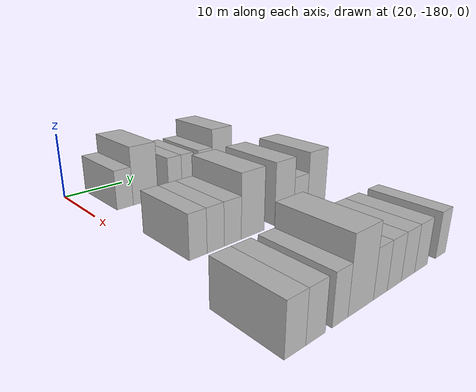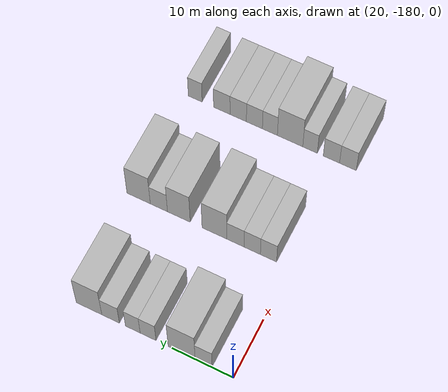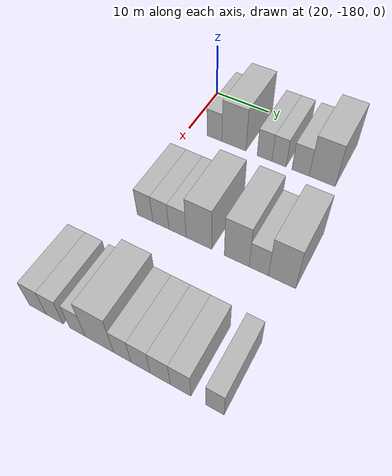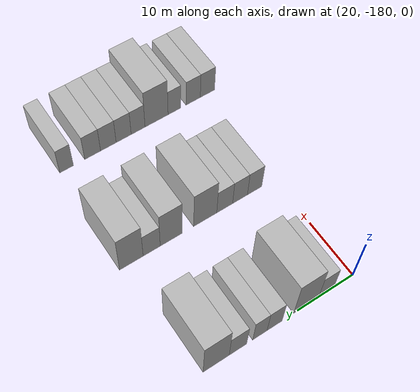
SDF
<sdf version="1.6">
 <world name="default">
  <model name="building_16">
   <static>1</static>
   <pose>25.0000 -175.1283 0 0.000000 0.000000 0.000000</pose>
   <link name="link">
    <pose>0 0 3.00 0 0 0</pose>
    <collision name="collision"><geometry><box><size>10.0000 2.7526 6.0000</size></box></geometry></collision>
    <visual name="visual">
     <cast_shadows>0</cast_shadows>
     <geometry><box><size>10.0000 2.7526 6.0000</size></box></geometry>
     <material>
      <script>
       <uri>model://HANNAS_wall/materials/scripts</uri>
       <uri>model://HANNAS_wall/materials/textures</uri>
       <name>vrc/HANNAS_wall</name>
      </script>
     </material>
    </visual>
   </link>
  </model>
  <model name="building_17">
   <static>1</static>
   <pose>25.0000 -171.5461 0 0.000000 0.000000 0.000000</pose>
   <link name="link">
    <pose>0 0 4.50 0 0 0</pose>
    <collision name="collision"><geometry><box><size>10.0000 4.4117 9.0000</size></box></geometry></collision>
    <visual name="visual">
     <cast_shadows>0</cast_shadows>
     <geometry><box><size>10.0000 4.4117 9.0000</size></box></geometry>
     <material>
      <script>
       <uri>model://HANNAS_wall/materials/scripts</uri>
       <uri>model://HANNAS_wall/materials/textures</uri>
       <name>vrc/HANNAS_wall</name>
      </script>
     </material>
    </visual>
   </link>
  </model>
  <model name="building_18">
   <static>1</static>
   <pose>25.0000 -166.0316 0 0.000000 0.000000 0.000000</pose>
   <link name="link">
    <pose>0 0 3.00 0 0 0</pose>
    <collision name="collision"><geometry><box><size>10.0000 2.6173 6.0000</size></box></geometry></collision>
    <visual name="visual">
     <cast_shadows>0</cast_shadows>
     <geometry><box><size>10.0000 2.6173 6.0000</size></box></geometry>
     <material>
      <script>
       <uri>model://HANNAS_wall/materials/scripts</uri>
       <uri>model://HANNAS_wall/materials/textures</uri>
       <name>vrc/HANNAS_wall</name>
      </script>
     </material>
    </visual>
   </link>
  </model>
  <model name="building_19">
   <static>1</static>
   <pose>25.0000 -163.5074 0 0.000000 0.000000 0.000000</pose>
   <link name="link">
    <pose>0 0 3.00 0 0 0</pose>
    <collision name="collision"><geometry><box><size>10.0000 2.4312 6.0000</size></box></geometry></collision>
    <visual name="visual">
     <cast_shadows>0</cast_shadows>
     <geometry><box><size>10.0000 2.4312 6.0000</size></box></geometry>
     <material>
      <script>
       <uri>model://HANNAS_wall/materials/scripts</uri>
       <uri>model://HANNAS_wall/materials/textures</uri>
       <name>vrc/HANNAS_wall</name>
      </script>
     </material>
    </visual>
   </link>
  </model>
  <model name="building_20">
   <static>1</static>
   <pose>25.0000 -159.8269 0 0.000000 0.000000 0.000000</pose>
   <link name="link">
    <pose>0 0 3.00 0 0 0</pose>
    <collision name="collision"><geometry><box><size>10.0000 2.9297 6.0000</size></box></geometry></collision>
    <visual name="visual">
     <cast_shadows>0</cast_shadows>
     <geometry><box><size>10.0000 2.9297 6.0000</size></box></geometry>
     <material>
      <script>
       <uri>model://HANNAS_wall/materials/scripts</uri>
       <uri>model://HANNAS_wall/materials/textures</uri>
       <name>vrc/HANNAS_wall</name>
      </script>
     </material>
    </visual>
   </link>
  </model>
  <model name="building_21">
   <static>1</static>
   <pose>25.0000 -156.2195 0 0.000000 0.000000 0.000000</pose>
   <link name="link">
    <pose>0 0 4.50 0 0 0</pose>
    <collision name="collision"><geometry><box><size>10.0000 4.2850 9.0000</size></box></geometry></collision>
    <visual name="visual">
     <cast_shadows>0</cast_shadows>
     <geometry><box><size>10.0000 4.2850 9.0000</size></box></geometry>
     <material>
      <script>
       <uri>model://HANNAS_wall/materials/scripts</uri>
       <uri>model://HANNAS_wall/materials/textures</uri>
       <name>vrc/HANNAS_wall</name>
      </script>
     </material>
    </visual>
   </link>
  </model>
  <model name="building_131">
   <static>1</static>
   <pose>44.0000 -176.3218 0 0.000000 0.000000 0.000000</pose>
   <link name="link">
    <pose>0 0 3.00 0 0 0</pose>
    <collision name="collision"><geometry><box><size>10.0000 2.6996 6.0000</size></box></geometry></collision>
    <visual name="visual">
     <cast_shadows>0</cast_shadows>
     <geometry><box><size>10.0000 2.6996 6.0000</size></box></geometry>
     <material>
      <script>
       <uri>model://HANNAS_wall/materials/scripts</uri>
       <uri>model://HANNAS_wall/materials/textures</uri>
       <name>vrc/HANNAS_wall</name>
      </script>
     </material>
    </visual>
   </link>
  </model>
  <model name="building_132">
   <static>1</static>
   <pose>44.0000 -173.6086 0 0.000000 0.000000 0.000000</pose>
   <link name="link">
    <pose>0 0 3.00 0 0 0</pose>
    <collision name="collision"><geometry><box><size>10.0000 2.7268 6.0000</size></box></geometry></collision>
    <visual name="visual">
     <cast_shadows>0</cast_shadows>
     <geometry><box><size>10.0000 2.7268 6.0000</size></box></geometry>
     <material>
      <script>
       <uri>model://HANNAS_wall/materials/scripts</uri>
       <uri>model://HANNAS_wall/materials/textures</uri>
       <name>vrc/HANNAS_wall</name>
      </script>
     </material>
    </visual>
   </link>
  </model>
  <model name="building_133">
   <static>1</static>
   <pose>44.0000 -170.7970 0 0.000000 0.000000 0.000000</pose>
   <link name="link">
    <pose>0 0 3.00 0 0 0</pose>
    <collision name="collision"><geometry><box><size>10.0000 2.8963 6.0000</size></box></geometry></collision>
    <visual name="visual">
     <cast_shadows>0</cast_shadows>
     <geometry><box><size>10.0000 2.8963 6.0000</size></box></geometry>
     <material>
      <script>
       <uri>model://HANNAS_wall/materials/scripts</uri>
       <uri>model://HANNAS_wall/materials/textures</uri>
       <name>vrc/HANNAS_wall</name>
      </script>
     </material>
    </visual>
   </link>
  </model>
  <model name="building_134">
   <static>1</static>
   <pose>44.0000 -167.2720 0 0.000000 0.000000 0.000000</pose>
   <link name="link">
    <pose>0 0 4.50 0 0 0</pose>
    <collision name="collision"><geometry><box><size>10.0000 4.1536 9.0000</size></box></geometry></collision>
    <visual name="visual">
     <cast_shadows>0</cast_shadows>
     <geometry><box><size>10.0000 4.1536 9.0000</size></box></geometry>
     <material>
      <script>
       <uri>model://HANNAS_wall/materials/scripts</uri>
       <uri>model://HANNAS_wall/materials/textures</uri>
       <name>vrc/HANNAS_wall</name>
      </script>
     </material>
    </visual>
   </link>
  </model>
  <model name="building_135">
   <static>1</static>
   <pose>44.0000 -161.2639 0 0.000000 0.000000 0.000000</pose>
   <link name="link">
    <pose>0 0 4.50 0 0 0</pose>
    <collision name="collision"><geometry><box><size>10.0000 3.8626 9.0000</size></box></geometry></collision>
    <visual name="visual">
     <cast_shadows>0</cast_shadows>
     <geometry><box><size>10.0000 3.8626 9.0000</size></box></geometry>
     <material>
      <script>
       <uri>model://HANNAS_wall/materials/scripts</uri>
       <uri>model://HANNAS_wall/materials/textures</uri>
       <name>vrc/HANNAS_wall</name>
      </script>
     </material>
    </visual>
   </link>
  </model>
  <model name="building_136">
   <static>1</static>
   <pose>44.0000 -157.8695 0 0.000000 0.000000 0.000000</pose>
   <link name="link">
    <pose>0 0 3.00 0 0 0</pose>
    <collision name="collision"><geometry><box><size>10.0000 2.9263 6.0000</size></box></geometry></collision>
    <visual name="visual">
     <cast_shadows>0</cast_shadows>
     <geometry><box><size>10.0000 2.9263 6.0000</size></box></geometry>
     <material>
      <script>
       <uri>model://HANNAS_wall/materials/scripts</uri>
       <uri>model://HANNAS_wall/materials/textures</uri>
       <name>vrc/HANNAS_wall</name>
      </script>
     </material>
    </visual>
   </link>
  </model>
  <model name="building_137">
   <static>1</static>
   <pose>44.0000 -154.4058 0 0.000000 0.000000 0.000000</pose>
   <link name="link">
    <pose>0 0 4.50 0 0 0</pose>
    <collision name="collision"><geometry><box><size>10.0000 4.0010 9.0000</size></box></geometry></collision>
    <visual name="visual">
     <cast_shadows>0</cast_shadows>
     <geometry><box><size>10.0000 4.0010 9.0000</size></box></geometry>
     <material>
      <script>
       <uri>model://HANNAS_wall/materials/scripts</uri>
       <uri>model://HANNAS_wall/materials/textures</uri>
       <name>vrc/HANNAS_wall</name>
      </script>
     </material>
    </visual>
   </link>
  </model>
  <model name="building_249">
   <static>1</static>
   <pose>63.0000 -180.5525 0 0.000000 0.000000 0.000000</pose>
   <link name="link">
    <pose>0 0 3.00 0 0 0</pose>
    <collision name="collision"><geometry><box><size>10.0000 2.8170 6.0000</size></box></geometry></collision>
    <visual name="visual">
     <cast_shadows>0</cast_shadows>
     <geometry><box><size>10.0000 2.8170 6.0000</size></box></geometry>
     <material>
      <script>
       <uri>model://HANNAS_wall/materials/scripts</uri>
       <uri>model://HANNAS_wall/materials/textures</uri>
       <name>vrc/HANNAS_wall</name>
      </script>
     </material>
    </visual>
   </link>
  </model>
  <model name="building_250">
   <static>1</static>
   <pose>63.0000 -177.7618 0 0.000000 0.000000 0.000000</pose>
   <link name="link">
    <pose>0 0 3.00 0 0 0</pose>
    <collision name="collision"><geometry><box><size>10.0000 2.7643 6.0000</size></box></geometry></collision>
    <visual name="visual">
     <cast_shadows>0</cast_shadows>
     <geometry><box><size>10.0000 2.7643 6.0000</size></box></geometry>
     <material>
      <script>
       <uri>model://HANNAS_wall/materials/scripts</uri>
       <uri>model://HANNAS_wall/materials/textures</uri>
       <name>vrc/HANNAS_wall</name>
      </script>
     </material>
    </visual>
   </link>
  </model>
  <model name="building_251">
   <static>1</static>
   <pose>63.0000 -174.1439 0 0.000000 0.000000 0.000000</pose>
   <link name="link">
    <pose>0 0 3.00 0 0 0</pose>
    <collision name="collision"><geometry><box><size>10.0000 2.4716 6.0000</size></box></geometry></collision>
    <visual name="visual">
     <cast_shadows>0</cast_shadows>
     <geometry><box><size>10.0000 2.4716 6.0000</size></box></geometry>
     <material>
      <script>
       <uri>model://HANNAS_wall/materials/scripts</uri>
       <uri>model://HANNAS_wall/materials/textures</uri>
       <name>vrc/HANNAS_wall</name>
      </script>
     </material>
    </visual>
   </link>
  </model>
  <model name="building_252">
   <static>1</static>
   <pose>63.0000 -170.7340 0 0.000000 0.000000 0.000000</pose>
   <link name="link">
    <pose>0 0 4.50 0 0 0</pose>
    <collision name="collision"><geometry><box><size>10.0000 4.3481 9.0000</size></box></geometry></collision>
    <visual name="visual">
     <cast_shadows>0</cast_shadows>
     <geometry><box><size>10.0000 4.3481 9.0000</size></box></geometry>
     <material>
      <script>
       <uri>model://HANNAS_wall/materials/scripts</uri>
       <uri>model://HANNAS_wall/materials/textures</uri>
       <name>vrc/HANNAS_wall</name>
      </script>
     </material>
    </visual>
   </link>
  </model>
  <model name="building_253">
   <static>1</static>
   <pose>63.0000 -167.2715 0 0.000000 0.000000 0.000000</pose>
   <link name="link">
    <pose>0 0 3.00 0 0 0</pose>
    <collision name="collision"><geometry><box><size>10.0000 2.5770 6.0000</size></box></geometry></collision>
    <visual name="visual">
     <cast_shadows>0</cast_shadows>
     <geometry><box><size>10.0000 2.5770 6.0000</size></box></geometry>
     <material>
      <script>
       <uri>model://HANNAS_wall/materials/scripts</uri>
       <uri>model://HANNAS_wall/materials/textures</uri>
       <name>vrc/HANNAS_wall</name>
      </script>
     </material>
    </visual>
   </link>
  </model>
  <model name="building_254">
   <static>1</static>
   <pose>63.0000 -164.6003 0 0.000000 0.000000 0.000000</pose>
   <link name="link">
    <pose>0 0 3.00 0 0 0</pose>
    <collision name="collision"><geometry><box><size>10.0000 2.7653 6.0000</size></box></geometry></collision>
    <visual name="visual">
     <cast_shadows>0</cast_shadows>
     <geometry><box><size>10.0000 2.7653 6.0000</size></box></geometry>
     <material>
      <script>
       <uri>model://HANNAS_wall/materials/scripts</uri>
       <uri>model://HANNAS_wall/materials/textures</uri>
       <name>vrc/HANNAS_wall</name>
      </script>
     </material>
    </visual>
   </link>
  </model>
  <model name="building_255">
   <static>1</static>
   <pose>63.0000 -161.8022 0 0.000000 0.000000 0.000000</pose>
   <link name="link">
    <pose>0 0 3.00 0 0 0</pose>
    <collision name="collision"><geometry><box><size>10.0000 2.8309 6.0000</size></box></geometry></collision>
    <visual name="visual">
     <cast_shadows>0</cast_shadows>
     <geometry><box><size>10.0000 2.8309 6.0000</size></box></geometry>
     <material>
      <script>
       <uri>model://HANNAS_wall/materials/scripts</uri>
       <uri>model://HANNAS_wall/materials/textures</uri>
       <name>vrc/HANNAS_wall</name>
      </script>
     </material>
    </visual>
   </link>
  </model>
  <model name="building_256">
   <static>1</static>
   <pose>63.0000 -158.9587 0 0.000000 0.000000 0.000000</pose>
   <link name="link">
    <pose>0 0 3.00 0 0 0</pose>
    <collision name="collision"><geometry><box><size>10.0000 2.8562 6.0000</size></box></geometry></collision>
    <visual name="visual">
     <cast_shadows>0</cast_shadows>
     <geometry><box><size>10.0000 2.8562 6.0000</size></box></geometry>
     <material>
      <script>
       <uri>model://HANNAS_wall/materials/scripts</uri>
       <uri>model://HANNAS_wall/materials/textures</uri>
       <name>vrc/HANNAS_wall</name>
      </script>
     </material>
    </visual>
   </link>
  </model>
  <model name="building_257">
   <static>1</static>
   <pose>63.0000 -154.3219 0 0.000000 0.000000 0.000000</pose>
   <link name="link">
    <pose>0 0 3.00 0 0 0</pose>
    <collision name="collision"><geometry><box><size>10.0000 2.4172 6.0000</size></box></geometry></collision>
    <visual name="visual">
     <cast_shadows>0</cast_shadows>
     <geometry><box><size>10.0000 2.4172 6.0000</size></box></geometry>
     <material>
      <script>
       <uri>model://HANNAS_wall/materials/scripts</uri>
       <uri>model://HANNAS_wall/materials/textures</uri>
       <name>vrc/HANNAS_wall</name>
      </script>
     </material>
    </visual>
   </link>
  </model>
 </world>
</sdf>
